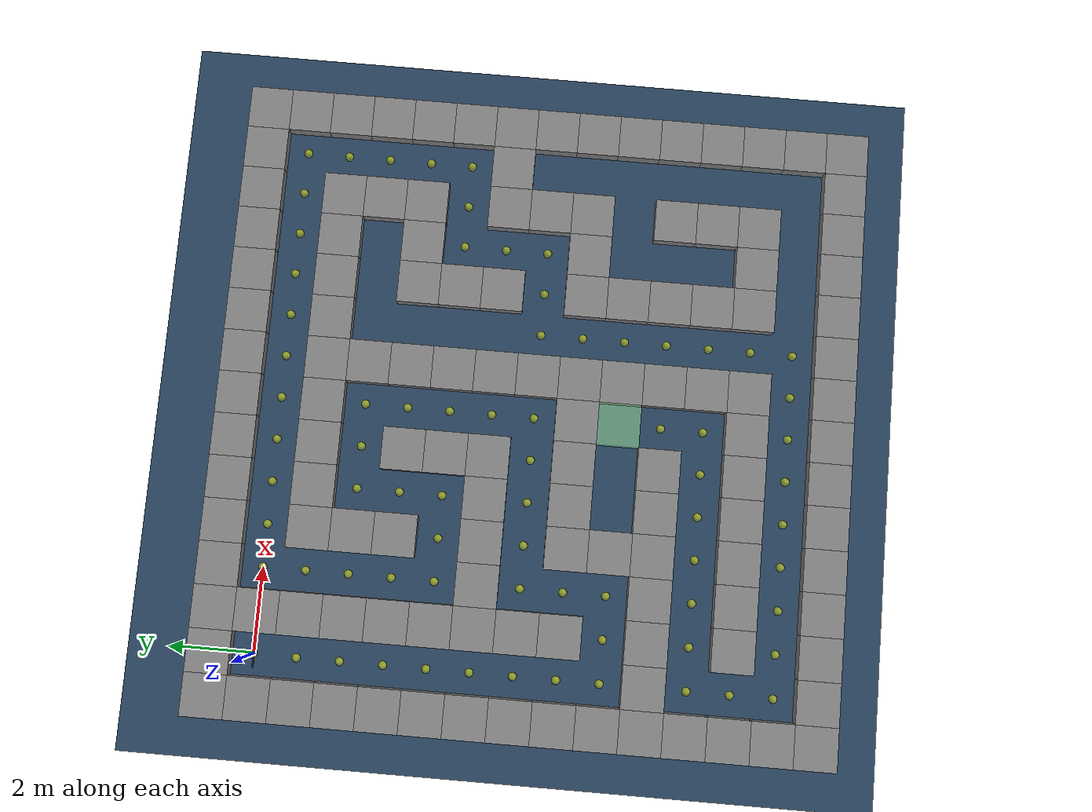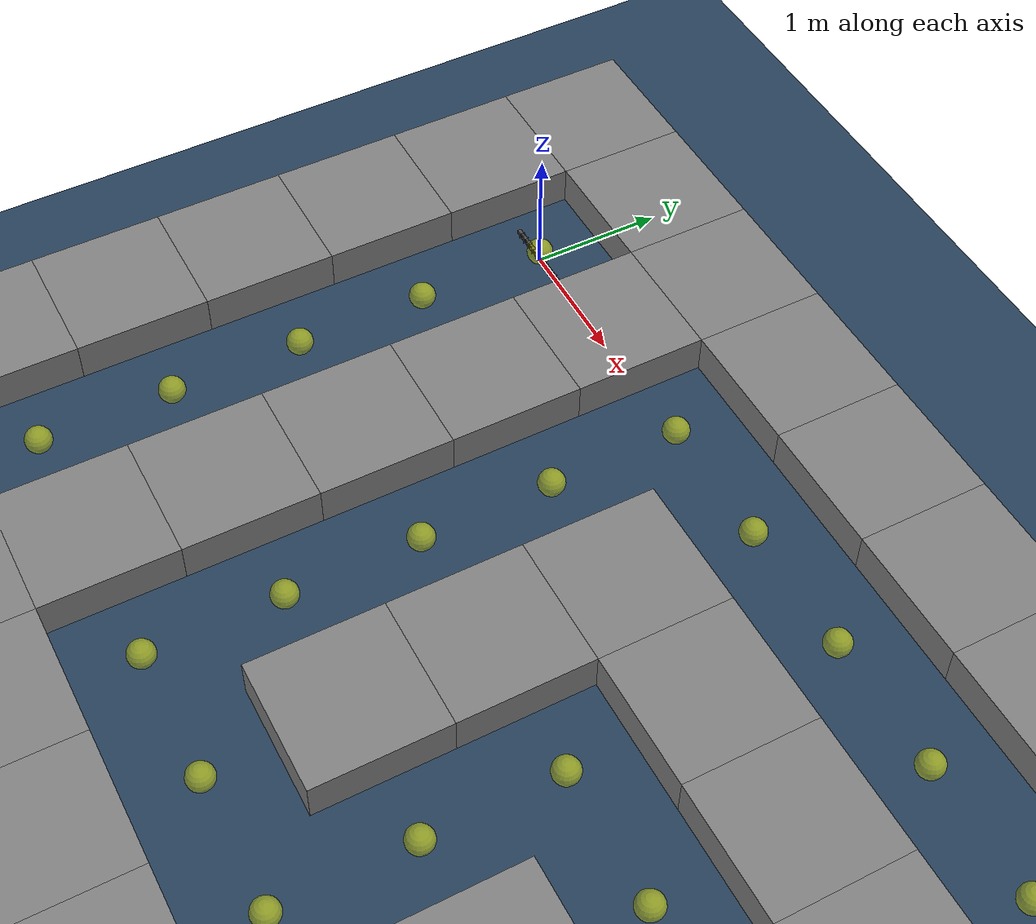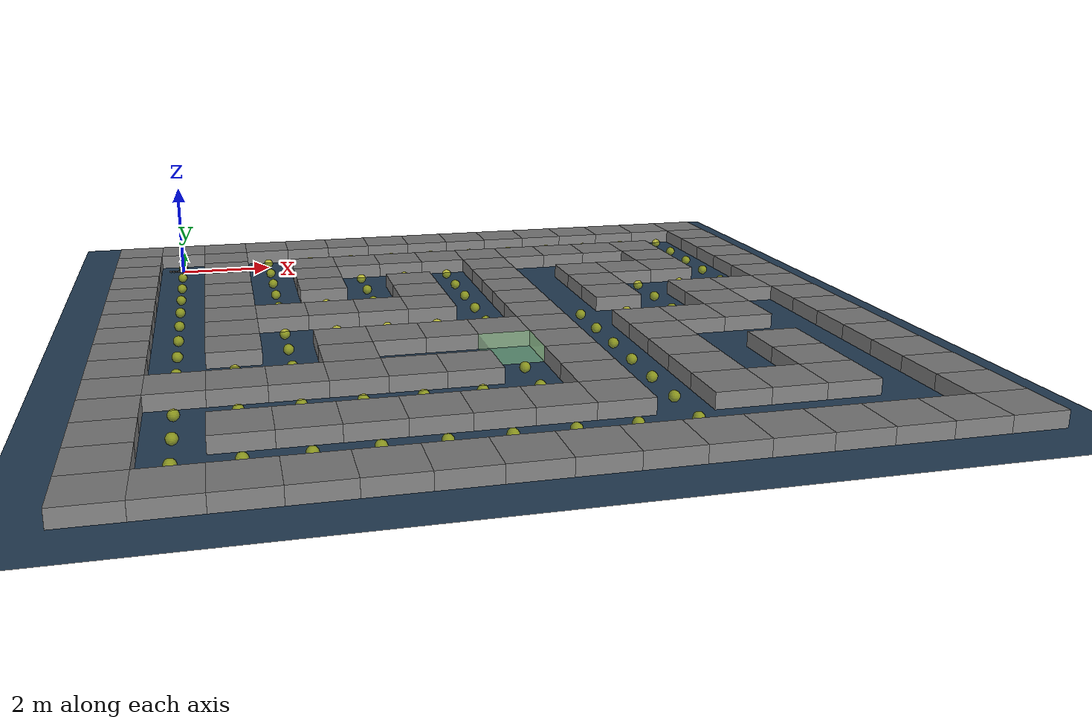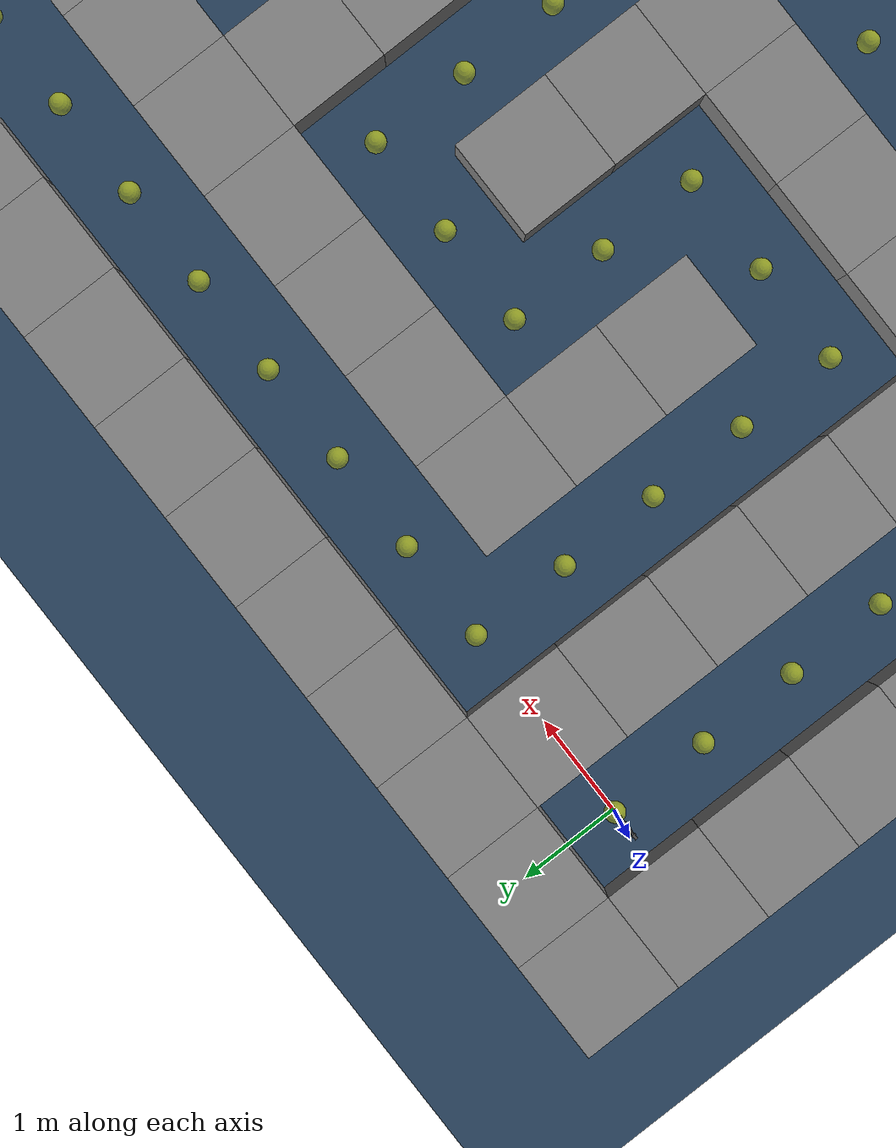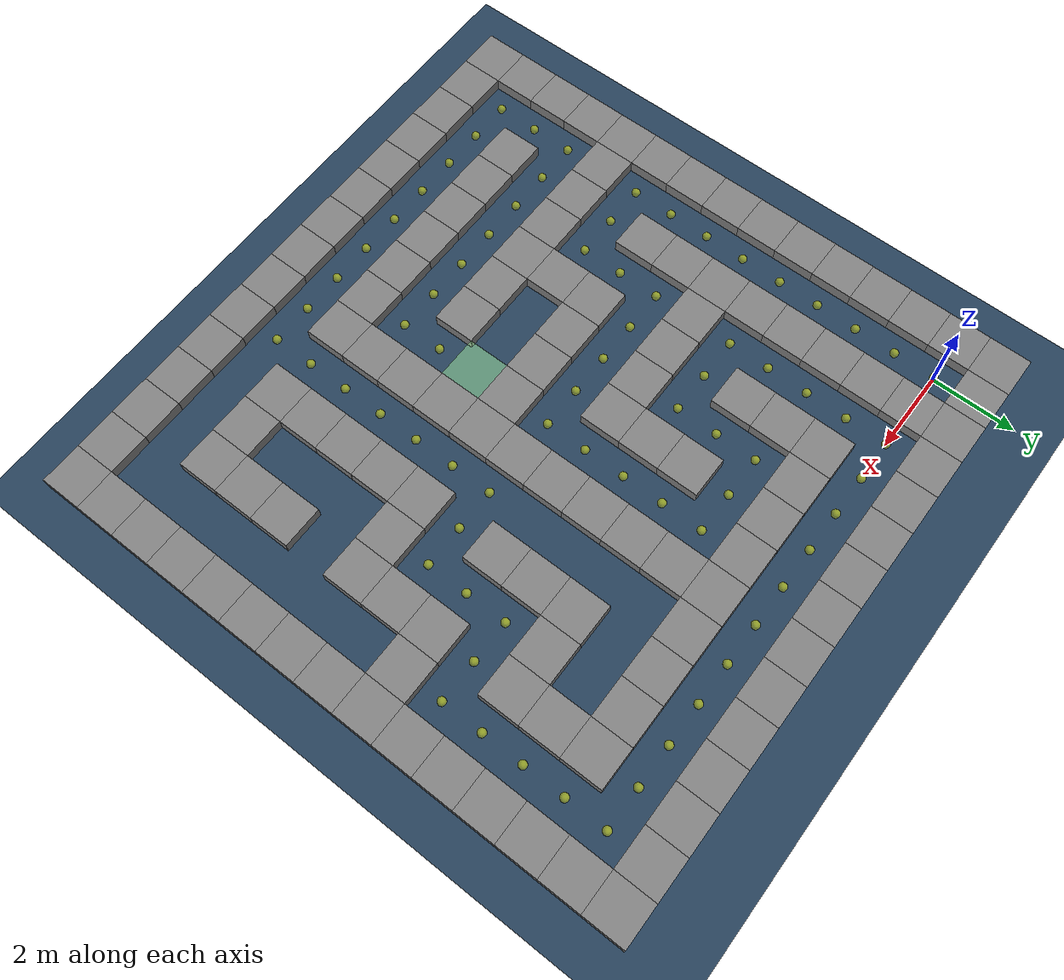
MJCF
<?xml version='1.0' encoding='utf-8'?>
<mujoco model="snake scene">
  <include file="snake.xml" />

  <statistic center="0.3 0 0.4" extent="0.8" />

  <visual>
    <headlight diffuse="0.6 0.6 0.6" ambient="0.1 0.1 0.1" specular="0 0 0" />
    <rgba haze="0.15 0.25 0.35 1" />
    <global azimuth="120" elevation="-20" />
  </visual>

  <asset>
    <texture type="skybox" builtin="gradient" rgb1="0.3 0.5 0.7" rgb2="0 0 0" width="512" height="3072" />
    <texture type="2d" name="groundplane" builtin="checker" mark="edge" rgb1="0.2 0.3 0.4" rgb2="0.1 0.2 0.3" markrgb="0.8 0.8 0.8" width="300" height="300" />
    <material name="groundplane" texture="groundplane" texuniform="true" texrepeat="5 5" reflectance="0.2" />
  </asset>

  <worldbody>
    <light pos="0 0 1.5" dir="0 0 -1" directional="true" />
    <geom name="floor" size="0 0 0.05" type="plane" material="groundplane" />
  <body name="box_0_0" pos="-1.0 1.0 0.15"><geom name="geom_0_0" type="box" size="0.5 0.5 0.15" rgba="0.5 0.5 0.5 1" /></body><body name="box_0_1" pos="0.0 1.0 0.15"><geom name="geom_0_1" type="box" size="0.5 0.5 0.15" rgba="0.5 0.5 0.5 1" /></body><body name="box_0_2" pos="1.0 1.0 0.15"><geom name="geom_0_2" type="box" size="0.5 0.5 0.15" rgba="0.5 0.5 0.5 1" /></body><body name="box_0_3" pos="2.0 1.0 0.15"><geom name="geom_0_3" type="box" size="0.5 0.5 0.15" rgba="0.5 0.5 0.5 1" /></body><body name="box_0_4" pos="3.0 1.0 0.15"><geom name="geom_0_4" type="box" size="0.5 0.5 0.15" rgba="0.5 0.5 0.5 1" /></body><body name="box_0_5" pos="4.0 1.0 0.15"><geom name="geom_0_5" type="box" size="0.5 0.5 0.15" rgba="0.5 0.5 0.5 1" /></body><body name="box_0_6" pos="5.0 1.0 0.15"><geom name="geom_0_6" type="box" size="0.5 0.5 0.15" rgba="0.5 0.5 0.5 1" /></body><body name="box_0_7" pos="6.0 1.0 0.15"><geom name="geom_0_7" type="box" size="0.5 0.5 0.15" rgba="0.5 0.5 0.5 1" /></body><body name="box_0_8" pos="7.0 1.0 0.15"><geom name="geom_0_8" type="box" size="0.5 0.5 0.15" rgba="0.5 0.5 0.5 1" /></body><body name="box_0_9" pos="8.0 1.0 0.15"><geom name="geom_0_9" type="box" size="0.5 0.5 0.15" rgba="0.5 0.5 0.5 1" /></body><body name="box_0_10" pos="9.0 1.0 0.15"><geom name="geom_0_10" type="box" size="0.5 0.5 0.15" rgba="0.5 0.5 0.5 1" /></body><body name="box_0_11" pos="10.0 1.0 0.15"><geom name="geom_0_11" type="box" size="0.5 0.5 0.15" rgba="0.5 0.5 0.5 1" /></body><body name="box_0_12" pos="11.0 1.0 0.15"><geom name="geom_0_12" type="box" size="0.5 0.5 0.15" rgba="0.5 0.5 0.5 1" /></body><body name="box_0_13" pos="12.0 1.0 0.15"><geom name="geom_0_13" type="box" size="0.5 0.5 0.15" rgba="0.5 0.5 0.5 1" /></body><body name="box_0_14" pos="13.0 1.0 0.15"><geom name="geom_0_14" type="box" size="0.5 0.5 0.15" rgba="0.5 0.5 0.5 1" /></body><body name="box_1_0" pos="-1.0 -0.0 0.15"><geom name="geom_1_0" type="box" size="0.5 0.5 0.15" rgba="0.5 0.5 0.5 1" /></body><body name="box_1_2" pos="1.0 -0.0 0.15"><geom name="geom_1_2" type="box" size="0.5 0.5 0.15" rgba="0.5 0.5 0.5 1" /></body><body name="box_1_14" pos="13.0 -0.0 0.15"><geom name="geom_1_14" type="box" size="0.5 0.5 0.15" rgba="0.5 0.5 0.5 1" /></body><body name="box_2_0" pos="-1.0 -1.0 0.15"><geom name="geom_2_0" type="box" size="0.5 0.5 0.15" rgba="0.5 0.5 0.5 1" /></body><body name="box_2_2" pos="1.0 -1.0 0.15"><geom name="geom_2_2" type="box" size="0.5 0.5 0.15" rgba="0.5 0.5 0.5 1" /></body><body name="box_2_4" pos="3.0 -1.0 0.15"><geom name="geom_2_4" type="box" size="0.5 0.5 0.15" rgba="0.5 0.5 0.5 1" /></body><body name="box_2_5" pos="4.0 -1.0 0.15"><geom name="geom_2_5" type="box" size="0.5 0.5 0.15" rgba="0.5 0.5 0.5 1" /></body><body name="box_2_6" pos="5.0 -1.0 0.15"><geom name="geom_2_6" type="box" size="0.5 0.5 0.15" rgba="0.5 0.5 0.5 1" /></body><body name="box_2_7" pos="6.0 -1.0 0.15"><geom name="geom_2_7" type="box" size="0.5 0.5 0.15" rgba="0.5 0.5 0.5 1" /></body><body name="box_2_8" pos="7.0 -1.0 0.15"><geom name="geom_2_8" type="box" size="0.5 0.5 0.15" rgba="0.5 0.5 0.5 1" /></body><body name="box_2_9" pos="8.0 -1.0 0.15"><geom name="geom_2_9" type="box" size="0.5 0.5 0.15" rgba="0.5 0.5 0.5 1" /></body><body name="box_2_10" pos="9.0 -1.0 0.15"><geom name="geom_2_10" type="box" size="0.5 0.5 0.15" rgba="0.5 0.5 0.5 1" /></body><body name="box_2_11" pos="10.0 -1.0 0.15"><geom name="geom_2_11" type="box" size="0.5 0.5 0.15" rgba="0.5 0.5 0.5 1" /></body><body name="box_2_12" pos="11.0 -1.0 0.15"><geom name="geom_2_12" type="box" size="0.5 0.5 0.15" rgba="0.5 0.5 0.5 1" /></body><body name="box_2_14" pos="13.0 -1.0 0.15"><geom name="geom_2_14" type="box" size="0.5 0.5 0.15" rgba="0.5 0.5 0.5 1" /></body><body name="box_3_0" pos="-1.0 -2.0 0.15"><geom name="geom_3_0" type="box" size="0.5 0.5 0.15" rgba="0.5 0.5 0.5 1" /></body><body name="box_3_2" pos="1.0 -2.0 0.15"><geom name="geom_3_2" type="box" size="0.5 0.5 0.15" rgba="0.5 0.5 0.5 1" /></body><body name="box_3_4" pos="3.0 -2.0 0.15"><geom name="geom_3_4" type="box" size="0.5 0.5 0.15" rgba="0.5 0.5 0.5 1" /></body><body name="box_3_8" pos="7.0 -2.0 0.15"><geom name="geom_3_8" type="box" size="0.5 0.5 0.15" rgba="0.5 0.5 0.5 1" /></body><body name="box_3_12" pos="11.0 -2.0 0.15"><geom name="geom_3_12" type="box" size="0.5 0.5 0.15" rgba="0.5 0.5 0.5 1" /></body><body name="box_3_14" pos="13.0 -2.0 0.15"><geom name="geom_3_14" type="box" size="0.5 0.5 0.15" rgba="0.5 0.5 0.5 1" /></body><body name="box_4_0" pos="-1.0 -3.0 0.15"><geom name="geom_4_0" type="box" size="0.5 0.5 0.15" rgba="0.5 0.5 0.5 1" /></body><body name="box_4_2" pos="1.0 -3.0 0.15"><geom name="geom_4_2" type="box" size="0.5 0.5 0.15" rgba="0.5 0.5 0.5 1" /></body><body name="box_4_4" pos="3.0 -3.0 0.15"><geom name="geom_4_4" type="box" size="0.5 0.5 0.15" rgba="0.5 0.5 0.5 1" /></body><body name="box_4_6" pos="5.0 -3.0 0.15"><geom name="geom_4_6" type="box" size="0.5 0.5 0.15" rgba="0.5 0.5 0.5 1" /></body><body name="box_4_8" pos="7.0 -3.0 0.15"><geom name="geom_4_8" type="box" size="0.5 0.5 0.15" rgba="0.5 0.5 0.5 1" /></body><body name="box_4_10" pos="9.0 -3.0 0.15"><geom name="geom_4_10" type="box" size="0.5 0.5 0.15" rgba="0.5 0.5 0.5 1" /></body><body name="box_4_11" pos="10.0 -3.0 0.15"><geom name="geom_4_11" type="box" size="0.5 0.5 0.15" rgba="0.5 0.5 0.5 1" /></body><body name="box_4_12" pos="11.0 -3.0 0.15"><geom name="geom_4_12" type="box" size="0.5 0.5 0.15" rgba="0.5 0.5 0.5 1" /></body><body name="box_4_14" pos="13.0 -3.0 0.15"><geom name="geom_4_14" type="box" size="0.5 0.5 0.15" rgba="0.5 0.5 0.5 1" /></body><body name="box_5_0" pos="-1.0 -4.0 0.15"><geom name="geom_5_0" type="box" size="0.5 0.5 0.15" rgba="0.5 0.5 0.5 1" /></body><body name="box_5_2" pos="1.0 -4.0 0.15"><geom name="geom_5_2" type="box" size="0.5 0.5 0.15" rgba="0.5 0.5 0.5 1" /></body><body name="box_5_6" pos="5.0 -4.0 0.15"><geom name="geom_5_6" type="box" size="0.5 0.5 0.15" rgba="0.5 0.5 0.5 1" /></body><body name="box_5_8" pos="7.0 -4.0 0.15"><geom name="geom_5_8" type="box" size="0.5 0.5 0.15" rgba="0.5 0.5 0.5 1" /></body><body name="box_5_10" pos="9.0 -4.0 0.15"><geom name="geom_5_10" type="box" size="0.5 0.5 0.15" rgba="0.5 0.5 0.5 1" /></body><body name="box_5_14" pos="13.0 -4.0 0.15"><geom name="geom_5_14" type="box" size="0.5 0.5 0.15" rgba="0.5 0.5 0.5 1" /></body><body name="box_6_0" pos="-1.0 -5.0 0.15"><geom name="geom_6_0" type="box" size="0.5 0.5 0.15" rgba="0.5 0.5 0.5 1" /></body><body name="box_6_2" pos="1.0 -5.0 0.15"><geom name="geom_6_2" type="box" size="0.5 0.5 0.15" rgba="0.5 0.5 0.5 1" /></body><body name="box_6_3" pos="2.0 -5.0 0.15"><geom name="geom_6_3" type="box" size="0.5 0.5 0.15" rgba="0.5 0.5 0.5 1" /></body><body name="box_6_4" pos="3.0 -5.0 0.15"><geom name="geom_6_4" type="box" size="0.5 0.5 0.15" rgba="0.5 0.5 0.5 1" /></body><body name="box_6_5" pos="4.0 -5.0 0.15"><geom name="geom_6_5" type="box" size="0.5 0.5 0.15" rgba="0.5 0.5 0.5 1" /></body><body name="box_6_6" pos="5.0 -5.0 0.15"><geom name="geom_6_6" type="box" size="0.5 0.5 0.15" rgba="0.5 0.5 0.5 1" /></body><body name="box_6_8" pos="7.0 -5.0 0.15"><geom name="geom_6_8" type="box" size="0.5 0.5 0.15" rgba="0.5 0.5 0.5 1" /></body><body name="box_6_10" pos="9.0 -5.0 0.15"><geom name="geom_6_10" type="box" size="0.5 0.5 0.15" rgba="0.5 0.5 0.5 1" /></body><body name="box_6_12" pos="11.0 -5.0 0.15"><geom name="geom_6_12" type="box" size="0.5 0.5 0.15" rgba="0.5 0.5 0.5 1" /></body><body name="box_6_13" pos="12.0 -5.0 0.15"><geom name="geom_6_13" type="box" size="0.5 0.5 0.15" rgba="0.5 0.5 0.5 1" /></body><body name="box_6_14" pos="13.0 -5.0 0.15"><geom name="geom_6_14" type="box" size="0.5 0.5 0.15" rgba="0.5 0.5 0.5 1" /></body><body name="box_7_0" pos="-1.0 -6.0 0.15"><geom name="geom_7_0" type="box" size="0.5 0.5 0.15" rgba="0.5 0.5 0.5 1" /></body><body name="box_7_2" pos="1.0 -6.0 0.15"><geom name="geom_7_2" type="box" size="0.5 0.5 0.15" rgba="0.5 0.5 0.5 1" /></body><body name="box_7_8" pos="7.0 -6.0 0.15"><geom name="geom_7_8" type="box" size="0.5 0.5 0.15" rgba="0.5 0.5 0.5 1" /></body><body name="box_7_12" pos="11.0 -6.0 0.15"><geom name="geom_7_12" type="box" size="0.5 0.5 0.15" rgba="0.5 0.5 0.5 1" /></body><body name="box_7_14" pos="13.0 -6.0 0.15"><geom name="geom_7_14" type="box" size="0.5 0.5 0.15" rgba="0.5 0.5 0.5 1" /></body><body name="box_8_0" pos="-1.0 -7.0 0.15"><geom name="geom_8_0" type="box" size="0.5 0.5 0.15" rgba="0.5 0.5 0.5 1" /></body><body name="box_8_2" pos="1.0 -7.0 0.15"><geom name="geom_8_2" type="box" size="0.5 0.5 0.15" rgba="0.5 0.5 0.5 1" /></body><body name="box_8_4" pos="3.0 -7.0 0.15"><geom name="geom_8_4" type="box" size="0.5 0.5 0.15" rgba="0.5 0.5 0.5 1" /></body><body name="box_8_5" pos="4.0 -7.0 0.15"><geom name="geom_8_5" type="box" size="0.5 0.5 0.15" rgba="0.5 0.5 0.5 1" /></body><body name="box_8_6" pos="5.0 -7.0 0.15"><geom name="geom_8_6" type="box" size="0.5 0.5 0.15" rgba="0.5 0.5 0.5 1" /></body><body name="box_8_7" pos="6.0 -7.0 0.15"><geom name="geom_8_7" type="box" size="0.5 0.5 0.15" rgba="0.5 0.5 0.5 1" /></body><body name="box_8_8" pos="7.0 -7.0 0.15"><geom name="geom_8_8" type="box" size="0.5 0.5 0.15" rgba="0.5 0.5 0.5 1" /></body><body name="box_8_10" pos="9.0 -7.0 0.15"><geom name="geom_8_10" type="box" size="0.5 0.5 0.15" rgba="0.5 0.5 0.5 1" /></body><body name="box_8_11" pos="10.0 -7.0 0.15"><geom name="geom_8_11" type="box" size="0.5 0.5 0.15" rgba="0.5 0.5 0.5 1" /></body><body name="box_8_12" pos="11.0 -7.0 0.15"><geom name="geom_8_12" type="box" size="0.5 0.5 0.15" rgba="0.5 0.5 0.5 1" /></body><body name="box_8_14" pos="13.0 -7.0 0.15"><geom name="geom_8_14" type="box" size="0.5 0.5 0.15" rgba="0.5 0.5 0.5 1" /></body><body name="box_9_0" pos="-1.0 -8.0 0.15"><geom name="geom_9_0" type="box" size="0.5 0.5 0.15" rgba="0.5 0.5 0.5 1" /></body><body name="box_9_4" pos="3.0 -8.0 0.15"><geom name="geom_9_4" type="box" size="0.5 0.5 0.15" rgba="0.5 0.5 0.5 1" /></body><body name="box_9_8" pos="7.0 -8.0 0.15"><geom name="geom_9_8" type="box" size="0.5 0.5 0.15" rgba="0.5 0.5 0.5 1" /></body><body name="box_9_10" pos="9.0 -8.0 0.15"><geom name="geom_9_10" type="box" size="0.5 0.5 0.15" rgba="0.5 0.5 0.5 1" /></body><body name="box_9_14" pos="13.0 -8.0 0.15"><geom name="geom_9_14" type="box" size="0.5 0.5 0.15" rgba="0.5 0.5 0.5 1" /></body><body name="box_10_0" pos="-1.0 -9.0 0.15"><geom name="geom_10_0" type="box" size="0.5 0.5 0.15" rgba="0.5 0.5 0.5 1" /></body><body name="box_10_1" pos="0.0 -9.0 0.15"><geom name="geom_10_1" type="box" size="0.5 0.5 0.15" rgba="0.5 0.5 0.5 1" /></body><body name="box_10_2" pos="1.0 -9.0 0.15"><geom name="geom_10_2" type="box" size="0.5 0.5 0.15" rgba="0.5 0.5 0.5 1" /></body><body name="box_10_3" pos="2.0 -9.0 0.15"><geom name="geom_10_3" type="box" size="0.5 0.5 0.15" rgba="0.5 0.5 0.5 1" /></body><body name="box_10_4" pos="3.0 -9.0 0.15"><geom name="geom_10_4" type="box" size="0.5 0.5 0.15" rgba="0.5 0.5 0.5 1" /></body><body name="box_10_5" pos="4.0 -9.0 0.15"><geom name="geom_10_5" type="box" size="0.5 0.5 0.15" rgba="0.5 0.5 0.5 1" /></body><body name="box_10_6" pos="5.0 -9.0 0.15"><geom name="geom_10_6" type="box" size="0.5 0.5 0.15" rgba="0.5 0.5 0.5 1" /></body><body name="box_10_8" pos="7.0 -9.0 0.15"><geom name="geom_10_8" type="box" size="0.5 0.5 0.15" rgba="0.5 0.5 0.5 1" /></body><body name="box_10_10" pos="9.0 -9.0 0.15"><geom name="geom_10_10" type="box" size="0.5 0.5 0.15" rgba="0.5 0.5 0.5 1" /></body><body name="box_10_12" pos="11.0 -9.0 0.15"><geom name="geom_10_12" type="box" size="0.5 0.5 0.15" rgba="0.5 0.5 0.5 1" /></body><body name="box_10_14" pos="13.0 -9.0 0.15"><geom name="geom_10_14" type="box" size="0.5 0.5 0.15" rgba="0.5 0.5 0.5 1" /></body><body name="box_11_0" pos="-1.0 -10.0 0.15"><geom name="geom_11_0" type="box" size="0.5 0.5 0.15" rgba="0.5 0.5 0.5 1" /></body><body name="box_11_8" pos="7.0 -10.0 0.15"><geom name="geom_11_8" type="box" size="0.5 0.5 0.15" rgba="0.5 0.5 0.5 1" /></body><body name="box_11_10" pos="9.0 -10.0 0.15"><geom name="geom_11_10" type="box" size="0.5 0.5 0.15" rgba="0.5 0.5 0.5 1" /></body><body name="box_11_12" pos="11.0 -10.0 0.15"><geom name="geom_11_12" type="box" size="0.5 0.5 0.15" rgba="0.5 0.5 0.5 1" /></body><body name="box_11_14" pos="13.0 -10.0 0.15"><geom name="geom_11_14" type="box" size="0.5 0.5 0.15" rgba="0.5 0.5 0.5 1" /></body><body name="box_12_0" pos="-1.0 -11.0 0.15"><geom name="geom_12_0" type="box" size="0.5 0.5 0.15" rgba="0.5 0.5 0.5 1" /></body><body name="box_12_2" pos="1.0 -11.0 0.15"><geom name="geom_12_2" type="box" size="0.5 0.5 0.15" rgba="0.5 0.5 0.5 1" /></body><body name="box_12_3" pos="2.0 -11.0 0.15"><geom name="geom_12_3" type="box" size="0.5 0.5 0.15" rgba="0.5 0.5 0.5 1" /></body><body name="box_12_4" pos="3.0 -11.0 0.15"><geom name="geom_12_4" type="box" size="0.5 0.5 0.15" rgba="0.5 0.5 0.5 1" /></body><body name="box_12_5" pos="4.0 -11.0 0.15"><geom name="geom_12_5" type="box" size="0.5 0.5 0.15" rgba="0.5 0.5 0.5 1" /></body><body name="box_12_6" pos="5.0 -11.0 0.15"><geom name="geom_12_6" type="box" size="0.5 0.5 0.15" rgba="0.5 0.5 0.5 1" /></body><body name="box_12_7" pos="6.0 -11.0 0.15"><geom name="geom_12_7" type="box" size="0.5 0.5 0.15" rgba="0.5 0.5 0.5 1" /></body><body name="box_12_8" pos="7.0 -11.0 0.15"><geom name="geom_12_8" type="box" size="0.5 0.5 0.15" rgba="0.5 0.5 0.5 1" /></body><body name="box_12_10" pos="9.0 -11.0 0.15"><geom name="geom_12_10" type="box" size="0.5 0.5 0.15" rgba="0.5 0.5 0.5 1" /></body><body name="box_12_11" pos="10.0 -11.0 0.15"><geom name="geom_12_11" type="box" size="0.5 0.5 0.15" rgba="0.5 0.5 0.5 1" /></body><body name="box_12_12" pos="11.0 -11.0 0.15"><geom name="geom_12_12" type="box" size="0.5 0.5 0.15" rgba="0.5 0.5 0.5 1" /></body><body name="box_12_14" pos="13.0 -11.0 0.15"><geom name="geom_12_14" type="box" size="0.5 0.5 0.15" rgba="0.5 0.5 0.5 1" /></body><body name="box_13_0" pos="-1.0 -12.0 0.15"><geom name="geom_13_0" type="box" size="0.5 0.5 0.15" rgba="0.5 0.5 0.5 1" /></body><body name="box_13_14" pos="13.0 -12.0 0.15"><geom name="geom_13_14" type="box" size="0.5 0.5 0.15" rgba="0.5 0.5 0.5 1" /></body><body name="box_14_0" pos="-1.0 -13.0 0.15"><geom name="geom_14_0" type="box" size="0.5 0.5 0.15" rgba="0.5 0.5 0.5 1" /></body><body name="box_14_1" pos="0.0 -13.0 0.15"><geom name="geom_14_1" type="box" size="0.5 0.5 0.15" rgba="0.5 0.5 0.5 1" /></body><body name="box_14_2" pos="1.0 -13.0 0.15"><geom name="geom_14_2" type="box" size="0.5 0.5 0.15" rgba="0.5 0.5 0.5 1" /></body><body name="box_14_3" pos="2.0 -13.0 0.15"><geom name="geom_14_3" type="box" size="0.5 0.5 0.15" rgba="0.5 0.5 0.5 1" /></body><body name="box_14_4" pos="3.0 -13.0 0.15"><geom name="geom_14_4" type="box" size="0.5 0.5 0.15" rgba="0.5 0.5 0.5 1" /></body><body name="box_14_5" pos="4.0 -13.0 0.15"><geom name="geom_14_5" type="box" size="0.5 0.5 0.15" rgba="0.5 0.5 0.5 1" /></body><body name="box_14_6" pos="5.0 -13.0 0.15"><geom name="geom_14_6" type="box" size="0.5 0.5 0.15" rgba="0.5 0.5 0.5 1" /></body><body name="box_14_7" pos="6.0 -13.0 0.15"><geom name="geom_14_7" type="box" size="0.5 0.5 0.15" rgba="0.5 0.5 0.5 1" /></body><body name="box_14_8" pos="7.0 -13.0 0.15"><geom name="geom_14_8" type="box" size="0.5 0.5 0.15" rgba="0.5 0.5 0.5 1" /></body><body name="box_14_9" pos="8.0 -13.0 0.15"><geom name="geom_14_9" type="box" size="0.5 0.5 0.15" rgba="0.5 0.5 0.5 1" /></body><body name="box_14_10" pos="9.0 -13.0 0.15"><geom name="geom_14_10" type="box" size="0.5 0.5 0.15" rgba="0.5 0.5 0.5 1" /></body><body name="box_14_11" pos="10.0 -13.0 0.15"><geom name="geom_14_11" type="box" size="0.5 0.5 0.15" rgba="0.5 0.5 0.5 1" /></body><body name="box_14_12" pos="11.0 -13.0 0.15"><geom name="geom_14_12" type="box" size="0.5 0.5 0.15" rgba="0.5 0.5 0.5 1" /></body><body name="box_14_13" pos="12.0 -13.0 0.15"><geom name="geom_14_13" type="box" size="0.5 0.5 0.15" rgba="0.5 0.5 0.5 1" /></body><body name="box_14_14" pos="13.0 -13.0 0.15"><geom name="geom_14_14" type="box" size="0.5 0.5 0.15" rgba="0.5 0.5 0.5 1" /></body><geom name="waypoint_0" type="sphere" size="0.1" pos="0.0 -0.0 0.1" rgba="1 1 0 0.5" contype="0" conaffinity="0" /><geom name="waypoint_1" type="sphere" size="0.1" pos="0.0 -1.0 0.1" rgba="1 1 0 0.5" contype="0" conaffinity="0" /><geom name="waypoint_2" type="sphere" size="0.1" pos="0.0 -2.0 0.1" rgba="1 1 0 0.5" contype="0" conaffinity="0" /><geom name="waypoint_3" type="sphere" size="0.1" pos="0.0 -3.0 0.1" rgba="1 1 0 0.5" contype="0" conaffinity="0" /><geom name="waypoint_4" type="sphere" size="0.1" pos="0.0 -4.0 0.1" rgba="1 1 0 0.5" contype="0" conaffinity="0" /><geom name="waypoint_5" type="sphere" size="0.1" pos="0.0 -5.0 0.1" rgba="1 1 0 0.5" contype="0" conaffinity="0" /><geom name="waypoint_6" type="sphere" size="0.1" pos="0.0 -6.0 0.1" rgba="1 1 0 0.5" contype="0" conaffinity="0" /><geom name="waypoint_7" type="sphere" size="0.1" pos="0.0 -7.0 0.1" rgba="1 1 0 0.5" contype="0" conaffinity="0" /><geom name="waypoint_8" type="sphere" size="0.1" pos="0.0 -8.0 0.1" rgba="1 1 0 0.5" contype="0" conaffinity="0" /><geom name="waypoint_9" type="sphere" size="0.1" pos="1.0 -8.0 0.1" rgba="1 1 0 0.5" contype="0" conaffinity="0" /><geom name="waypoint_10" type="sphere" size="0.1" pos="2.0 -8.0 0.1" rgba="1 1 0 0.5" contype="0" conaffinity="0" /><geom name="waypoint_11" type="sphere" size="0.1" pos="2.0 -7.0 0.1" rgba="1 1 0 0.5" contype="0" conaffinity="0" /><geom name="waypoint_12" type="sphere" size="0.1" pos="2.0 -6.0 0.1" rgba="1 1 0 0.5" contype="0" conaffinity="0" /><geom name="waypoint_13" type="sphere" size="0.1" pos="3.0 -6.0 0.1" rgba="1 1 0 0.5" contype="0" conaffinity="0" /><geom name="waypoint_14" type="sphere" size="0.1" pos="4.0 -6.0 0.1" rgba="1 1 0 0.5" contype="0" conaffinity="0" /><geom name="waypoint_15" type="sphere" size="0.1" pos="5.0 -6.0 0.1" rgba="1 1 0 0.5" contype="0" conaffinity="0" /><geom name="waypoint_16" type="sphere" size="0.1" pos="6.0 -6.0 0.1" rgba="1 1 0 0.5" contype="0" conaffinity="0" /><geom name="waypoint_17" type="sphere" size="0.1" pos="6.0 -5.0 0.1" rgba="1 1 0 0.5" contype="0" conaffinity="0" /><geom name="waypoint_18" type="sphere" size="0.1" pos="6.0 -4.0 0.1" rgba="1 1 0 0.5" contype="0" conaffinity="0" /><geom name="waypoint_19" type="sphere" size="0.1" pos="6.0 -3.0 0.1" rgba="1 1 0 0.5" contype="0" conaffinity="0" /><geom name="waypoint_20" type="sphere" size="0.1" pos="6.0 -2.0 0.1" rgba="1 1 0 0.5" contype="0" conaffinity="0" /><geom name="waypoint_21" type="sphere" size="0.1" pos="5.0 -2.0 0.1" rgba="1 1 0 0.5" contype="0" conaffinity="0" /><geom name="waypoint_22" type="sphere" size="0.1" pos="4.0 -2.0 0.1" rgba="1 1 0 0.5" contype="0" conaffinity="0" /><geom name="waypoint_23" type="sphere" size="0.1" pos="4.0 -3.0 0.1" rgba="1 1 0 0.5" contype="0" conaffinity="0" /><geom name="waypoint_24" type="sphere" size="0.1" pos="4.0 -4.0 0.1" rgba="1 1 0 0.5" contype="0" conaffinity="0" /><geom name="waypoint_25" type="sphere" size="0.1" pos="3.0 -4.0 0.1" rgba="1 1 0 0.5" contype="0" conaffinity="0" /><geom name="waypoint_26" type="sphere" size="0.1" pos="2.0 -4.0 0.1" rgba="1 1 0 0.5" contype="0" conaffinity="0" /><geom name="waypoint_27" type="sphere" size="0.1" pos="2.0 -3.0 0.1" rgba="1 1 0 0.5" contype="0" conaffinity="0" /><geom name="waypoint_28" type="sphere" size="0.1" pos="2.0 -2.0 0.1" rgba="1 1 0 0.5" contype="0" conaffinity="0" /><geom name="waypoint_29" type="sphere" size="0.1" pos="2.0 -1.0 0.1" rgba="1 1 0 0.5" contype="0" conaffinity="0" /><geom name="waypoint_30" type="sphere" size="0.1" pos="2.0 -0.0 0.1" rgba="1 1 0 0.5" contype="0" conaffinity="0" /><geom name="waypoint_31" type="sphere" size="0.1" pos="3.0 -0.0 0.1" rgba="1 1 0 0.5" contype="0" conaffinity="0" /><geom name="waypoint_32" type="sphere" size="0.1" pos="4.0 -0.0 0.1" rgba="1 1 0 0.5" contype="0" conaffinity="0" /><geom name="waypoint_33" type="sphere" size="0.1" pos="5.0 -0.0 0.1" rgba="1 1 0 0.5" contype="0" conaffinity="0" /><geom name="waypoint_34" type="sphere" size="0.1" pos="6.0 -0.0 0.1" rgba="1 1 0 0.5" contype="0" conaffinity="0" /><geom name="waypoint_35" type="sphere" size="0.1" pos="7.0 -0.0 0.1" rgba="1 1 0 0.5" contype="0" conaffinity="0" /><geom name="waypoint_36" type="sphere" size="0.1" pos="8.0 -0.0 0.1" rgba="1 1 0 0.5" contype="0" conaffinity="0" /><geom name="waypoint_37" type="sphere" size="0.1" pos="9.0 -0.0 0.1" rgba="1 1 0 0.5" contype="0" conaffinity="0" /><geom name="waypoint_38" type="sphere" size="0.1" pos="10.0 -0.0 0.1" rgba="1 1 0 0.5" contype="0" conaffinity="0" /><geom name="waypoint_39" type="sphere" size="0.1" pos="11.0 -0.0 0.1" rgba="1 1 0 0.5" contype="0" conaffinity="0" /><geom name="waypoint_40" type="sphere" size="0.1" pos="12.0 -0.0 0.1" rgba="1 1 0 0.5" contype="0" conaffinity="0" /><geom name="waypoint_41" type="sphere" size="0.1" pos="12.0 -1.0 0.1" rgba="1 1 0 0.5" contype="0" conaffinity="0" /><geom name="waypoint_42" type="sphere" size="0.1" pos="12.0 -2.0 0.1" rgba="1 1 0 0.5" contype="0" conaffinity="0" /><geom name="waypoint_43" type="sphere" size="0.1" pos="12.0 -3.0 0.1" rgba="1 1 0 0.5" contype="0" conaffinity="0" /><geom name="waypoint_44" type="sphere" size="0.1" pos="12.0 -4.0 0.1" rgba="1 1 0 0.5" contype="0" conaffinity="0" /><geom name="waypoint_45" type="sphere" size="0.1" pos="11.0 -4.0 0.1" rgba="1 1 0 0.5" contype="0" conaffinity="0" /><geom name="waypoint_46" type="sphere" size="0.1" pos="10.0 -4.0 0.1" rgba="1 1 0 0.5" contype="0" conaffinity="0" /><geom name="waypoint_47" type="sphere" size="0.1" pos="10.0 -5.0 0.1" rgba="1 1 0 0.5" contype="0" conaffinity="0" /><geom name="waypoint_48" type="sphere" size="0.1" pos="10.0 -6.0 0.1" rgba="1 1 0 0.5" contype="0" conaffinity="0" /><geom name="waypoint_49" type="sphere" size="0.1" pos="9.0 -6.0 0.1" rgba="1 1 0 0.5" contype="0" conaffinity="0" /><geom name="waypoint_50" type="sphere" size="0.1" pos="8.0 -6.0 0.1" rgba="1 1 0 0.5" contype="0" conaffinity="0" /><geom name="waypoint_51" type="sphere" size="0.1" pos="8.0 -7.0 0.1" rgba="1 1 0 0.5" contype="0" conaffinity="0" /><geom name="waypoint_52" type="sphere" size="0.1" pos="8.0 -8.0 0.1" rgba="1 1 0 0.5" contype="0" conaffinity="0" /><geom name="waypoint_53" type="sphere" size="0.1" pos="8.0 -9.0 0.1" rgba="1 1 0 0.5" contype="0" conaffinity="0" /><geom name="waypoint_54" type="sphere" size="0.1" pos="8.0 -10.0 0.1" rgba="1 1 0 0.5" contype="0" conaffinity="0" /><geom name="waypoint_55" type="sphere" size="0.1" pos="8.0 -11.0 0.1" rgba="1 1 0 0.5" contype="0" conaffinity="0" /><geom name="waypoint_56" type="sphere" size="0.1" pos="8.0 -12.0 0.1" rgba="1 1 0 0.5" contype="0" conaffinity="0" /><geom name="waypoint_57" type="sphere" size="0.1" pos="7.0 -12.0 0.1" rgba="1 1 0 0.5" contype="0" conaffinity="0" /><geom name="waypoint_58" type="sphere" size="0.1" pos="6.0 -12.0 0.1" rgba="1 1 0 0.5" contype="0" conaffinity="0" /><geom name="waypoint_59" type="sphere" size="0.1" pos="5.0 -12.0 0.1" rgba="1 1 0 0.5" contype="0" conaffinity="0" /><geom name="waypoint_60" type="sphere" size="0.1" pos="4.0 -12.0 0.1" rgba="1 1 0 0.5" contype="0" conaffinity="0" /><geom name="waypoint_61" type="sphere" size="0.1" pos="3.0 -12.0 0.1" rgba="1 1 0 0.5" contype="0" conaffinity="0" /><geom name="waypoint_62" type="sphere" size="0.1" pos="2.0 -12.0 0.1" rgba="1 1 0 0.5" contype="0" conaffinity="0" /><geom name="waypoint_63" type="sphere" size="0.1" pos="1.0 -12.0 0.1" rgba="1 1 0 0.5" contype="0" conaffinity="0" /><geom name="waypoint_64" type="sphere" size="0.1" pos="0.0 -12.0 0.1" rgba="1 1 0 0.5" contype="0" conaffinity="0" /><geom name="waypoint_65" type="sphere" size="0.1" pos="0.0 -11.0 0.1" rgba="1 1 0 0.5" contype="0" conaffinity="0" /><geom name="waypoint_66" type="sphere" size="0.1" pos="0.0 -10.0 0.1" rgba="1 1 0 0.5" contype="0" conaffinity="0" /><geom name="waypoint_67" type="sphere" size="0.1" pos="1.0 -10.0 0.1" rgba="1 1 0 0.5" contype="0" conaffinity="0" /><geom name="waypoint_68" type="sphere" size="0.1" pos="2.0 -10.0 0.1" rgba="1 1 0 0.5" contype="0" conaffinity="0" /><geom name="waypoint_69" type="sphere" size="0.1" pos="3.0 -10.0 0.1" rgba="1 1 0 0.5" contype="0" conaffinity="0" /><geom name="waypoint_70" type="sphere" size="0.1" pos="4.0 -10.0 0.1" rgba="1 1 0 0.5" contype="0" conaffinity="0" /><geom name="waypoint_71" type="sphere" size="0.1" pos="5.0 -10.0 0.1" rgba="1 1 0 0.5" contype="0" conaffinity="0" /><geom name="waypoint_72" type="sphere" size="0.1" pos="6.0 -10.0 0.1" rgba="1 1 0 0.5" contype="0" conaffinity="0" /><geom name="waypoint_73" type="sphere" size="0.1" pos="6.0 -9.0 0.1" rgba="1 1 0 0.5" contype="0" conaffinity="0" /><geom name="waypoint_74" type="sphere" size="0.1" pos="6.0 -8.0 0.1" rgba="1 1 0 0.5" contype="0" conaffinity="0" /><body name="goal" pos="6.0 -8.0 0.15"><geom name="goal_geom" type="box" size="0.5 0.5 0.15" contype="0" conaffinity="0" rgba="0.6 0.9 0.6 0.5" /></body></worldbody>

</mujoco>

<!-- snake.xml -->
<mujoco model="snake">
  <compiler angle="radian" meshdir="assets" autolimits="true"/>

  <option integrator="implicitfast"/>

  <default>
    <geom friction="3 0.005 0.0001" />
  </default>
  <asset>
    <!-- ナシ -->
  </asset>
  <worldbody>
    <light name="spotlight" mode="targetbodycom" target="frame_0-1" pos="0 -1 2"/>

    <!--  ================= SNAKE ================= /-->
    <body name="frame_0-1" pos="0.5 0 0" quat="0 0 0 1">
      <camera name="track" mode="trackcom" pos="0.5 1 1" xyaxes="-1 0 0 0 -1 1"/>
      <joint type="free"/>
      <geom density="1000" type="box" size=".0235 .014 .01675" pos= ".0235 0 .02675 " rgba="0.3 0.3 0.3 1"  /><!--motor box(head)-->
      <geom density="1000" type="box" size=".0075 .00275 .021" pos= ".0075 -.01675 .0225 " rgba="0.5 0.5 0.5 1" /><!--side box-->
      <geom density="1000" type="box" size=".0075 .00275 .021" pos= ".0075 .01675 .0225 " rgba="0.5 0.5 0.5 1" /><!--side box-->

      <body name="frame0-2" pos="0.5 0 0"  >
      <joint  pos=".0075 -.014 .0035" axis="0 1 0" limited="false" /><!--wheel joint-->
      <geom density="1000" type="cylinder" size=".0035" fromto= ".0075 -.014 .0035 .0075 -.012 .0035" rgba="0.3 0.3 0.3 1" /><!--Left wheel-->
      <geom density="1000" type="cylinder" size=".0035" fromto= ".0075 .014 .0035 .0075 .012 .0035" rgba="0.3 0.3 0.3 1" /><!--Right wheel-->
      <geom density="1000" type="cylinder" size=".001" fromto= ".0075 -.012 .0035 .0075 .012 .0035" rgba="0.3 0.3 0.3 1" /><!--wheel axle-->
      </body>

      <body name="frame1_1" pos="0.035 0 0"  >
        <joint name="Actuator1" pos="0 0 0" axis="0 0 1" limited="true" range="-3 3"/>
        <geom density="1000" type="box" size=".015 .01 .0001" pos= ".015 0 .04355 " rgba="0.3 0.3 0.3 1" /><!--connecter-->
        <geom density="1000" type="box" size=".015 .01 .0001" pos= ".015 0 .00905 " rgba="0.3 0.3 0.3 1" /><!--connecter-->
        <geom density="1000" type="box" size=".001 .01 .01675" pos= ".029 0 .02675 " rgba="0.3 0.3 0.3 1" /><!--connecter-->
        <geom density="1000" type="box" size=".0235 .014 .01675" pos= ".0535 0 .02675 " rgba="0.3 0.3 0.3 1" /><!--motor box-->
        <geom density="1000" type="box" size=".0075 .00275 .021" pos= ".0375 -.01675 .0225 " rgba="0.5 0.5 0.5 1" /><!--side box-->
        <geom density="1000" type="box" size=".0075 .00275 .021" pos= ".0375 .01675 .0225 " rgba="0.5 0.5 0.5 1" /><!--side box-->

        <body name="frame1-2" pos="0.03 0 0"  >
        <joint  pos=".0075 -.014 .0035" axis="0 1 0" limited="false" />
        <geom density="1000" type="cylinder" size=".0035" fromto= ".0075 -.014 .0035 .0075 -.012 .0035" rgba="0.3 0.3 0.3 1" /><!--Left wheel-->
        <geom density="1000" type="cylinder" size=".0035" fromto= ".0075 .014 .0035 .0075 .012 .0035" rgba="0.3 0.3 0.3 1" /><!--Right wheel-->
        <geom density="1000" type="cylinder" size=".001" fromto= ".0075 -.012 .0035 .0075 .012 .0035" rgba="0.3 0.3 0.3 1" /><!--wheel axle-->
        </body>

        <body name="frame2_1" pos="0.065 0 0"  >
          <joint name="Actuator2" pos="0 0 0" axis="0 0 1" limited="true" range="-3 3"/>
          <geom density="1000" type="box" size=".015 .01 .0001" pos= ".015 0 .04355 " rgba="0.3 0.3 0.3 1" /><!--connecter-->
          <geom density="1000" type="box" size=".015 .01 .0001" pos= ".015 0 .00905 " rgba="0.3 0.3 0.3 1" /><!--connecter-->
          <geom density="1000" type="box" size=".001 .01 .01675" pos= ".029 0 .02675 " rgba="0.3 0.3 0.3 1" /><!--connecter-->
          <geom density="1000" type="box" size=".0235 .014 .01675" pos= ".0535 0 .02675 " rgba="0.3 0.3 0.3 1" /><!--motor box-->
          <geom density="1000" type="box" size=".0075 .00275 .021" pos= ".0375 -.01675 .0225 " rgba="0.5 0.5 0.5 1" /><!--side box-->
          <geom density="1000" type="box" size=".0075 .00275 .021" pos= ".0375 .01675 .0225 " rgba="0.5 0.5 0.5 1" /><!--side box-->

          <body name="frame2-2" pos="0.03 0 0"  >
          <joint  pos=".0075 -.014 .0035" axis="0 1 0" limited="false" />
          <geom density="1000" type="cylinder" size=".0035" fromto= ".0075 -.014 .0035 .0075 -.012 .0035" rgba="0.3 0.3 0.3 1" /><!--Left wheel-->
          <geom density="1000" type="cylinder" size=".0035" fromto= ".0075 .014 .0035 .0075 .012 .0035" rgba="0.3 0.3 0.3 1" /><!--Right wheel-->
          <geom density="1000" type="cylinder" size=".001" fromto= ".0075 -.012 .0035 .0075 .012 .0035" rgba="0.3 0.3 0.3 1" /><!--wheel axle-->
          </body>

          <body name="frame3_1" pos="0.065 0 0"  >
            <joint name="Actuator3" pos="0 0 0" axis="0 0 1" limited="true" range="-3 3"/>
            <geom density="1000" type="box" size=".015 .01 .0001" pos= ".015 0 .04355 " rgba="0.3 0.3 0.3 1" /><!--connecter-->
            <geom density="1000" type="box" size=".015 .01 .0001" pos= ".015 0 .00905 " rgba="0.3 0.3 0.3 1" /><!--connecter-->
            <geom density="1000" type="box" size=".001 .01 .01675" pos= ".029 0 .02675 " rgba="0.3 0.3 0.3 1" /><!--connecter-->
            <geom density="1000" type="box" size=".0235 .014 .01675" pos= ".0535 0 .02675 " rgba="0.3 0.3 0.3 1" /><!--motor box-->
            <geom density="1000" type="box" size=".0075 .00275 .021" pos= ".0375 -.01675 .0225 " rgba="0.5 0.5 0.5 1" /><!--side box-->
            <geom density="1000" type="box" size=".0075 .00275 .021" pos= ".0375 .01675 .0225 " rgba="0.5 0.5 0.5 1" /><!--side box-->

            <body name="frame3-2" pos="0.03 0 0"  >
            <joint  pos=".0075 -.014 .0035" axis="0 1 0" limited="false" />
            <geom density="1000" type="cylinder" size=".0035" fromto= ".0075 -.014 .0035 .0075 -.012 .0035" rgba="0.3 0.3 0.3 1" /><!--Left wheel-->
            <geom density="1000" type="cylinder" size=".0035" fromto= ".0075 .014 .0035 .0075 .012 .0035" rgba="0.3 0.3 0.3 1" /><!--Right wheel-->
            <geom density="1000" type="cylinder" size=".001" fromto= ".0075 -.012 .0035 .0075 .012 .0035" rgba="0.3 0.3 0.3 1" /><!--wheel axle-->
            </body>

            <body name="frame4_1" pos="0.065 0 0"  >
              <joint name="Actuator4" pos="0 0 0" axis="0 0 1" limited="true" range="-3 3"/>
              <geom density="1000" type="box" size=".015 .01 .0001" pos= ".015 0 .04355 " rgba="0.3 0.3 0.3 1" /><!--connecter-->
              <geom density="1000" type="box" size=".015 .01 .0001" pos= ".015 0 .00905 " rgba="0.3 0.3 0.3 1" /><!--connecter-->
              <geom density="1000" type="box" size=".001 .01 .01675" pos= ".029 0 .02675 " rgba="0.3 0.3 0.3 1" /><!--connecter-->
              <geom density="1000" type="box" size=".0235 .014 .01675" pos= ".0535 0 .02675 " rgba="0.3 0.3 0.3 1" /><!--motor box-->
              <geom density="1000" type="box" size=".0075 .00275 .021" pos= ".0375 -.01675 .0225 " rgba="0.5 0.5 0.5 1" /><!--side box-->
              <geom density="1000" type="box" size=".0075 .00275 .021" pos= ".0375 .01675 .0225 " rgba="0.5 0.5 0.5 1" /><!--side box-->

              <body name="frame4-2" pos="0.03 0 0"  >
              <joint  pos=".0075 -.014 .0035" axis="0 1 0" limited="false" />
              <geom density="1000" type="cylinder" size=".0035" fromto= ".0075 -.014 .0035 .0075 -.012 .0035" rgba="0.3 0.3 0.3 1" /><!--Left wheel-->
              <geom density="1000" type="cylinder" size=".0035" fromto= ".0075 .014 .0035 .0075 .012 .0035" rgba="0.3 0.3 0.3 1" /><!--Right wheel-->
              <geom density="1000" type="cylinder" size=".001" fromto= ".0075 -.012 .0035 .0075 .012 .0035" rgba="0.3 0.3 0.3 1" /><!--wheel axle-->
              </body>

              <body name="frame5_1" pos="0.065 0 0"  >
                <joint name="Actuator5" pos="0 0 0" axis="0 0 1" limited="true" range="-3 3"/>
                <geom density="1000" type="box" size=".015 .01 .0001" pos= ".015 0 .04355 " rgba="0.3 0.3 0.3 1" /><!--connecter-->
                <geom density="1000" type="box" size=".015 .01 .0001" pos= ".015 0 .00905 " rgba="0.3 0.3 0.3 1" /><!--connecter-->
                <geom density="1000" type="box" size=".001 .01 .01675" pos= ".029 0 .02675 " rgba="0.3 0.3 0.3 1" /><!--connecter-->
                <geom density="1000" type="box" size=".0235 .014 .01675" pos= ".0535 0 .02675 " rgba="0.3 0.3 0.3 1" /><!--motor box-->
                <geom density="1000" type="box" size=".0075 .00275 .021" pos= ".0375 -.01675 .0225 " rgba="0.5 0.5 0.5 1" /><!--side box-->
                <geom density="1000" type="box" size=".0075 .00275 .021" pos= ".0375 .01675 .0225 " rgba="0.5 0.5 0.5 1" /><!--side box-->

                <body name="frame5-2" pos="0.03 0 0"  >
                <joint  pos=".0075 -.014 .0035" axis="0 1 0" limited="false" />
                <geom density="1000" type="cylinder" size=".0035" fromto= ".0075 -.014 .0035 .0075 -.012 .0035" rgba="0.3 0.3 0.3 1" /><!--Left wheel-->
                <geom density="1000" type="cylinder" size=".0035" fromto= ".0075 .014 .0035 .0075 .012 .0035" rgba="0.3 0.3 0.3 1" /><!--Right wheel-->
                <geom density="1000" type="cylinder" size=".001" fromto= ".0075 -.012 .0035 .0075 .012 .0035" rgba="0.3 0.3 0.3 1" /><!--wheel axle-->
                </body>

                <body name="frame6_1" pos="0.065 0 0"  >
                  <joint name="Actuator6" pos="0 0 0" axis="0 0 1" limited="true" range="-3 3"/>
                  <geom density="1000" type="box" size=".015 .01 .0001" pos= ".015 0 .04355 " rgba="0.3 0.3 0.3 1" /><!--connecter-->
                  <geom density="1000" type="box" size=".015 .01 .0001" pos= ".015 0 .00905 " rgba="0.3 0.3 0.3 1" /><!--connecter-->
                  <geom density="1000" type="box" size=".001 .01 .01675" pos= ".029 0 .02675 " rgba="0.3 0.3 0.3 1" /><!--connecter-->
                  <geom density="1000" type="box" size=".0235 .014 .01675" pos= ".0535 0 .02675 " rgba="0.3 0.3 0.3 1" /><!--motor box-->
                  <geom density="1000" type="box" size=".0075 .00275 .021" pos= ".0375 -.01675 .0225 " rgba="0.5 0.5 0.5 1" /><!--side box-->
                  <geom density="1000" type="box" size=".0075 .00275 .021" pos= ".0375 .01675 .0225 " rgba="0.5 0.5 0.5 1" /><!--side box-->

                  <body name="frame6-2" pos="0.03 0 0"  >
                  <joint  pos=".0075 -.014 .0035" axis="0 1 0" limited="false" />
                  <geom density="1000" type="cylinder" size=".0035" fromto= ".0075 -.014 .0035 .0075 -.012 .0035" rgba="0.3 0.3 0.3 1" /><!--Left wheel-->
                  <geom density="1000" type="cylinder" size=".0035" fromto= ".0075 .014 .0035 .0075 .012 .0035" rgba="0.3 0.3 0.3 1" /><!--Right wheel-->
                  <geom density="1000" type="cylinder" size=".001" fromto= ".0075 -.012 .0035 .0075 .012 .0035" rgba="0.3 0.3 0.3 1" /><!--wheel axle-->
                  </body>

                  <body name="frame7_1" pos="0.065 0 0"  >
                    <joint name="Actuator7" pos="0 0 0" axis="0 0 1" limited="true" range="-3 3"/>
                    <geom density="1000" type="box" size=".015 .01 .0001" pos= ".015 0 .04355 " rgba="0.3 0.3 0.3 1" /><!--connecter-->
                    <geom density="1000" type="box" size=".015 .01 .0001" pos= ".015 0 .00905 " rgba="0.3 0.3 0.3 1" /><!--connecter-->
                    <geom density="1000" type="box" size=".001 .01 .01675" pos= ".029 0 .02675 " rgba="0.3 0.3 0.3 1" /><!--connecter-->
                    <geom density="1000" type="box" size=".0235 .014 .01675" pos= ".0535 0 .02675 " rgba="0.3 0.3 0.3 1" /><!--motor box-->
                    <geom density="1000" type="box" size=".0075 .00275 .021" pos= ".0375 -.01675 .0225 " rgba="0.5 0.5 0.5 1" /><!--side box-->
                    <geom density="1000" type="box" size=".0075 .00275 .021" pos= ".0375 .01675 .0225 " rgba="0.5 0.5 0.5 1" /><!--side box-->

                    <body name="frame7-2" pos="0.03 0 0"  >
                    <joint  pos=".0075 -.014 .0035" axis="0 1 0" limited="false" />
                    <geom density="1000" type="cylinder" size=".0035" fromto= ".0075 -.014 .0035 .0075 -.012 .0035" rgba="0.3 0.3 0.3 1" /><!--Left wheel-->
                    <geom density="1000" type="cylinder" size=".0035" fromto= ".0075 .014 .0035 .0075 .012 .0035" rgba="0.3 0.3 0.3 1" /><!--Right wheel-->
                    <geom density="1000" type="cylinder" size=".001" fromto= ".0075 -.012 .0035 .0075 .012 .0035" rgba="0.3 0.3 0.3 1" /><!--wheel axle-->
                    </body>

                    <body name="frame8_1" pos="0.065 0 0"  >
                      <joint name="Actuator8" pos="0 0 0" axis="0 0 1" limited="true" range="-3 3"/>
                      <geom density="1000" type="box" size=".015 .01 .0001" pos= ".015 0 .04355 " rgba="0.3 0.3 0.3 1" /><!--connecter-->
                      <geom density="1000" type="box" size=".015 .01 .0001" pos= ".015 0 .00905 " rgba="0.3 0.3 0.3 1" /><!--connecter-->
                      <geom density="1000" type="box" size=".001 .01 .01675" pos= ".029 0 .02675 " rgba="0.3 0.3 0.3 1" /><!--connecter-->
                      <geom density="1000" type="box" size=".0235 .014 .01675" pos= ".0535 0 .02675 " rgba="0.3 0.3 0.3 1" /><!--motor box-->
                      <geom density="1000" type="box" size=".0075 .00275 .021" pos= ".0375 -.01675 .0225 " rgba="0.5 0.5 0.5 1" /><!--side box-->
                      <geom density="1000" type="box" size=".0075 .00275 .021" pos= ".0375 .01675 .0225 " rgba="0.5 0.5 0.5 1" /><!--side box-->

                      <body name="frame8-2" pos="0.03 0 0"  >
                      <joint  pos=".0075 -.014 .0035" axis="0 1 0" limited="false" />
                      <geom density="1000" type="cylinder" size=".0035" fromto= ".0075 -.014 .0035 .0075 -.012 .0035" rgba="0.3 0.3 0.3 1" /><!--Left wheel-->
                      <geom density="1000" type="cylinder" size=".0035" fromto= ".0075 .014 .0035 .0075 .012 .0035" rgba="0.3 0.3 0.3 1" /><!--Right wheel-->
                      <geom density="1000" type="cylinder" size=".001" fromto= ".0075 -.012 .0035 .0075 .012 .0035" rgba="0.3 0.3 0.3 1" /><!--wheel axle-->
                      </body>

                      <body name="frame9_1" pos="0.065 0 0"  >
                        <joint name="Actuator9" pos="0 0 0" axis="0 0 1" limited="true" range="-3 3"/>
                        <geom density="1000" type="box" size=".015 .01 .0001" pos= ".015 0 .04355 " rgba="0.3 0.3 0.3 1" /><!--connecter-->
                        <geom density="1000" type="box" size=".015 .01 .0001" pos= ".015 0 .00905 " rgba="0.3 0.3 0.3 1" /><!--connecter-->
                        <geom density="1000" type="box" size=".001 .01 .01675" pos= ".029 0 .02675 " rgba="0.3 0.3 0.3 1" /><!--connecter-->
                        <geom density="1000" type="box" size=".0235 .014 .01675" pos= ".0535 0 .02675 " rgba="0.3 0.3 0.3 1" /><!--motor box-->
                        <geom density="1000" type="box" size=".0075 .00275 .021" pos= ".0375 -.01675 .0225 " rgba="0.5 0.5 0.5 1" /><!--side box-->
                        <geom density="1000" type="box" size=".0075 .00275 .021" pos= ".0375 .01675 .0225 " rgba="0.5 0.5 0.5 1" /><!--side box-->

                        <body name="frame9-2" pos="0.03 0 0 " >
                        <joint  pos=".0075 -.014 .0035" axis="0 1 0" limited="false" />
                        <geom density="1000" type="cylinder" size=".0035" fromto= ".0075 -.014 .0035 .0075 -.012 .0035" rgba="0.3 0.3 0.3 1" /><!--Left wheel-->
                        <geom density="1000" type="cylinder" size=".0035" fromto= ".0075 .014 .0035 .0075 .012 .0035" rgba="0.3 0.3 0.3 1" /><!--Right wheel-->
                        <geom density="1000" type="cylinder" size=".001" fromto= ".0075 -.012 .0035 .0075 .012 .0035" rgba="0.3 0.3 0.3 1" /><!--wheel axle-->
                        </body>

                        <body name="frame10_1" pos="0.065 0 0"  >
                          <joint name="Actuator10" pos="0 0 0" axis="0 0 1" limited="true" range="-3 3"/>
                          <geom density="1000" type="box" size=".015 .01 .0001" pos= ".015 0 .04355 " rgba="0.3 0.3 0.3 1" /><!--connecter-->
                          <geom density="1000" type="box" size=".015 .01 .0001" pos= ".015 0 .00905 " rgba="0.3 0.3 0.3 1" /><!--connecter-->
                          <geom density="1000" type="box" size=".001 .01 .01675" pos= ".029 0 .02675 " rgba="0.3 0.3 0.3 1" /><!--connecter-->
                          <geom density="1000" type="box" size=".0235 .014 .01675" pos= ".0535 0 .02675 " rgba="0.3 0.3 0.3 1" /><!--motor box-->
                          <geom density="1000" type="box" size=".0075 .00275 .021" pos= ".0375 -.01675 .0225 " rgba="0.5 0.5 0.5 1" /><!--side box-->
                          <geom density="1000" type="box" size=".0075 .00275 .021" pos= ".0375 .01675 .0225 " rgba="0.5 0.5 0.5 1" /><!--side box-->

                          <body name="frame10-2" pos="0.03 0 0"  >
                          <joint  pos=".0075 -.014 .0035" axis="0 1 0" limited="false" />
                          <geom density="1000" type="cylinder" size=".0035" fromto= ".0075 -.014 .0035 .0075 -.012 .0035" rgba="0.3 0.3 0.3 1" /><!--Left wheel-->
                          <geom density="1000" type="cylinder" size=".0035" fromto= ".0075 .014 .0035 .0075 .012 .0035" rgba="0.3 0.3 0.3 1" /><!--Right wheel-->
                          <geom density="1000" type="cylinder" size=".001" fromto= ".0075 -.012 .0035 .0075 .012 .0035" rgba="0.3 0.3 0.3 1" /><!--wheel axle-->
                          </body>

                          <body name="frame11_1" pos="0.065 0 0"  >
                            <joint name="Actuator11" pos="0 0 0" axis="0 0 1" limited="true" range="-3 3"/>
                            <geom density="1000" type="box" size=".015 .01 .0001" pos= ".015 0 .04355 " rgba="0.3 0.3 0.3 1" /><!--connecter-->
                            <geom density="1000" type="box" size=".015 .01 .0001" pos= ".015 0 .00905 " rgba="0.3 0.3 0.3 1" /><!--connecter-->
                            <geom density="1000" type="box" size=".001 .01 .01675" pos= ".029 0 .02675 " rgba="0.3 0.3 0.3 1" /><!--connecter-->
                            <geom density="1000" type="box" size=".0235 .014 .01675" pos= ".0535 0 .02675 " rgba="0.3 0.3 0.3 1" /><!--motor box-->
                            <geom density="1000" type="box" size=".0075 .00275 .021" pos= ".0375 -.01675 .0225 " rgba="0.5 0.5 0.5 1" /><!--side box-->
                            <geom density="1000" type="box" size=".0075 .00275 .021" pos= ".0375 .01675 .0225 " rgba="0.5 0.5 0.5 1" /><!--side box-->

                            <body name="frame11-2" pos="0.03 0 0"  >
                            <joint  pos=".0075 -.014 .0035" axis="0 1 0" limited="false" />
                            <geom density="1000" type="cylinder" size=".0035" fromto= ".0075 -.014 .0035 .0075 -.012 .0035" rgba="0.3 0.3 0.3 1" /><!--Left wheel-->
                            <geom density="1000" type="cylinder" size=".0035" fromto= ".0075 .014 .0035 .0075 .012 .0035" rgba="0.3 0.3 0.3 1" /><!--Right wheel-->
                            <geom density="1000" type="cylinder" size=".001" fromto= ".0075 -.012 .0035 .0075 .012 .0035" rgba="0.3 0.3 0.3 1" /><!--wheel axle-->
                            </body>

                            <body name="frame12_1" pos="0.065 0 0"  >
                              <joint name="Actuator12" pos="0 0 0" axis="0 0 1" limited="true" range="-3 3"/>
                              <geom density="1000" type="box" size=".015 .01 .0001" pos= ".015 0 .04355 " rgba="0.3 0.3 0.3 1" /><!--connecter-->
                              <geom density="1000" type="box" size=".015 .01 .0001" pos= ".015 0 .00905 " rgba="0.3 0.3 0.3 1" /><!--connecter-->
                              <geom density="1000" type="box" size=".001 .01 .01675" pos= ".029 0 .02675 " rgba="0.3 0.3 0.3 1" /><!--connecter-->
                              <geom density="1000" type="box" size=".0235 .014 .01675" pos= ".0535 0 .02675 " rgba="0.3 0.3 0.3 1" /><!--motor box-->
                              <geom density="1000" type="box" size=".0075 .00275 .021" pos= ".0375 -.01675 .0225 " rgba="0.5 0.5 0.5 1" /><!--side box-->
                              <geom density="1000" type="box" size=".0075 .00275 .021" pos= ".0375 .01675 .0225 " rgba="0.5 0.5 0.5 1" /><!--side box-->

                              <body name="frame12-2" pos="0.03 0 0" >
                              <joint  pos=".0075 -.014 .0035" axis="0 1 0" limited="false" />
                              <geom density="1000" type="cylinder" size=".0035" fromto= ".0075 -.014 .0035 .0075 -.012 .0035" rgba="0.3 0.3 0.3 1" /><!--Left wheel-->
                              <geom density="1000" type="cylinder" size=".0035" fromto= ".0075 .014 .0035 .0075 .012 .0035" rgba="0.3 0.3 0.3 1" /><!--Right wheel-->
                              <geom density="1000" type="cylinder" size=".001" fromto= ".0075 -.012 .0035 .0075 .012 .0035" rgba="0.3 0.3 0.3 1" /><!--wheel axle-->
                              </body>
                            </body>
                          </body>
                        </body>
                      </body>
                    </body>
                  </body>
                </body>
              </body>
            </body>
          </body>
        </body>
      </body>
    </body>
  </worldbody>

  <actuator>
    <position name="Actuator1" joint="Actuator1" kp = "5" kv = "0.4" ctrllimited="true" ctrlrange="-3 3"/>
    <position name="Actuator2" joint="Actuator2" kp = "5" kv = "0.4" ctrllimited="true" ctrlrange="-3 3"/>
    <position name="Actuator3" joint="Actuator3" kp = "5" kv = "0.4" ctrllimited="true" ctrlrange="-3 3"/>
    <position name="Actuator4" joint="Actuator4" kp = "5" kv = "0.4" ctrllimited="true" ctrlrange="-3 3"/>
    <position name="Actuator5" joint="Actuator5" kp = "5" kv = "0.4" ctrllimited="true" ctrlrange="-3 3"/>
    <position name="Actuator6" joint="Actuator6" kp = "5" kv = "0.4" ctrllimited="true" ctrlrange="-3 3"/>
    <position name="Actuator7" joint="Actuator7" kp = "5" kv = "0.4" ctrllimited="true" ctrlrange="-3 3"/>
    <position name="Actuator8" joint="Actuator8" kp = "5" kv = "0.4" ctrllimited="true" ctrlrange="-3 3"/>
    <position name="Actuator9" joint="Actuator9" kp = "5" kv = "0.4" ctrllimited="true" ctrlrange="-3 3"/>
    <position name="Actuator10" joint="Actuator10" kp = "5" kv = "0.4" ctrllimited="true" ctrlrange="-3 3"/>
    <position name="Actuator11" joint="Actuator11" kp = "5" kv = "0.4" ctrllimited="true" ctrlrange="-3 3"/>
    <position name="Actuator12" joint="Actuator12" kp = "5" kv = "0.4" ctrllimited="true" ctrlrange="-3 3"/>
  </actuator>
</mujoco>
